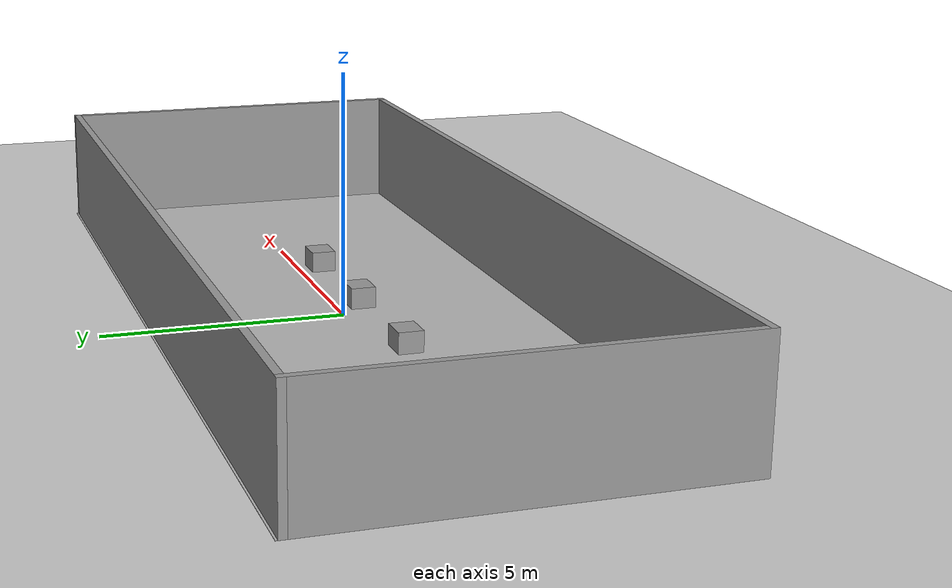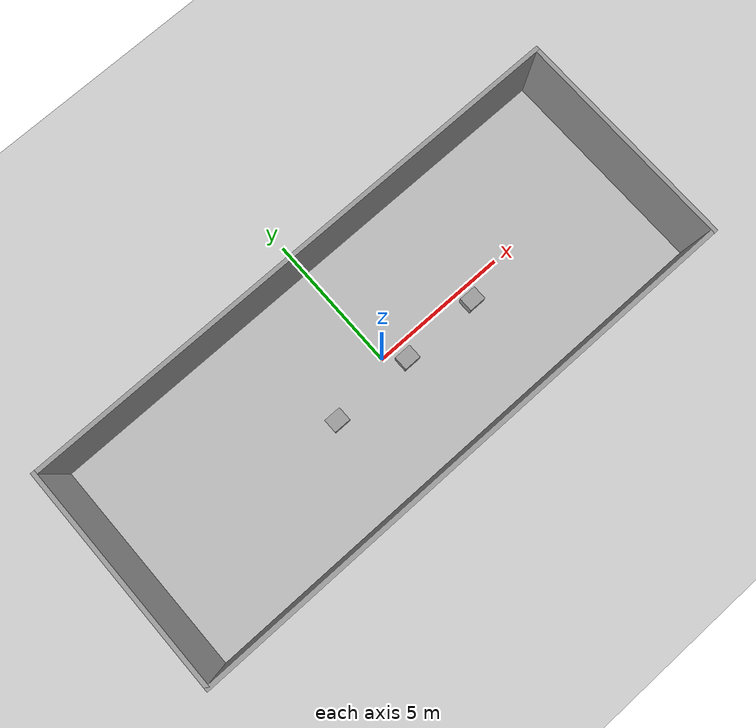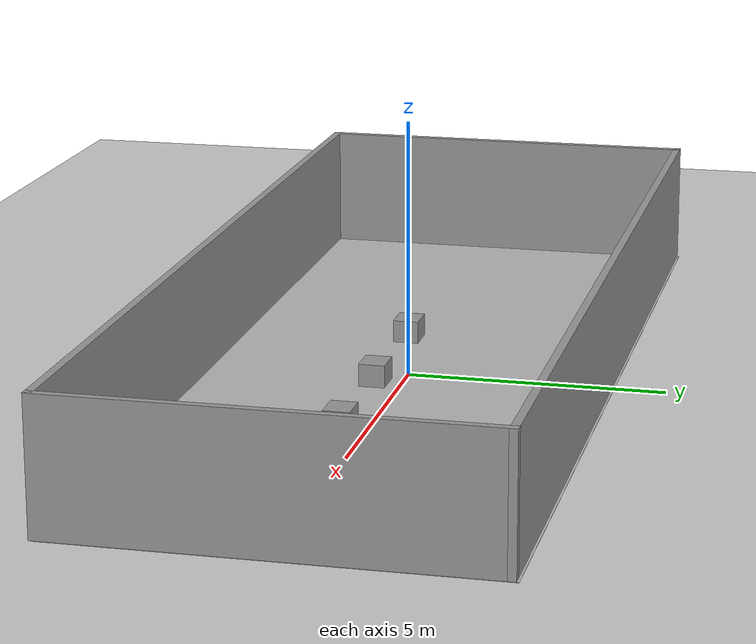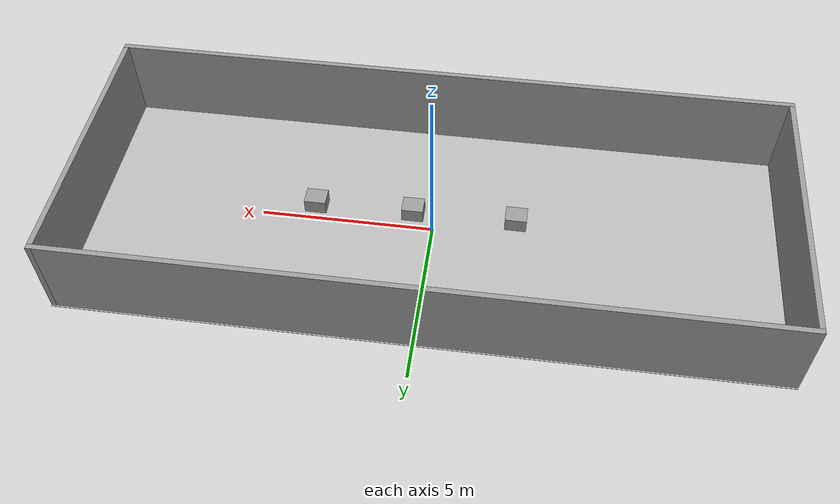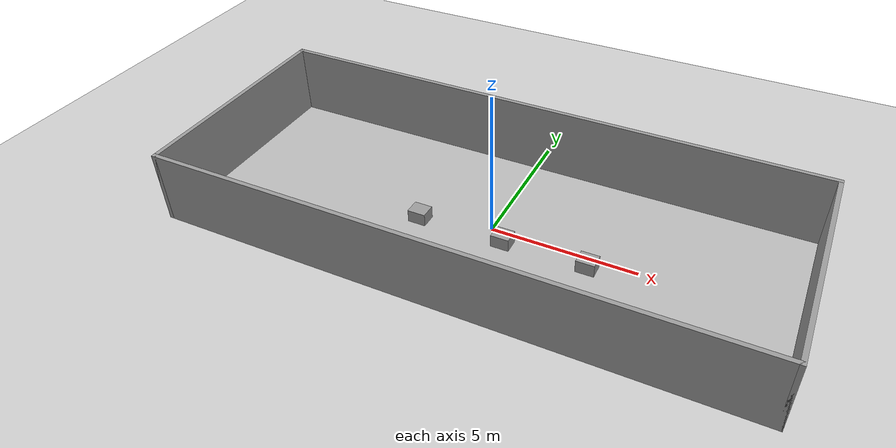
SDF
<sdf version="1.7">
 <world name="default">
  <light name="sun" type="directional">
   <pose>0 0 10 0 -0 0</pose>
   <diffuse>0.8 0.8 0.8 1</diffuse>
   <specular>0.2 0.2 0.2 1</specular>
   <attenuation>
    <range>1000</range>
    <constant>0.9</constant>
    <linear>0.01</linear>
    <quadratic>0.001</quadratic>
   </attenuation>
   <direction>-0.5 0.1 -0.9</direction>
   <spot><inner_angle>0</inner_angle><outer_angle>0</outer_angle><falloff>0</falloff></spot>
  </light>
  <model name="ground_plane">
   <static>1</static>
   <link name="link">
    <collision name="collision">
     <geometry><plane><normal>0 0 1</normal><size>100 100</size></plane></geometry>
     <surface><friction><ode><mu>100</mu><mu2>50</mu2></ode></friction></surface>
    </collision>
    <visual name="visual">
     <cast_shadows>0</cast_shadows>
     <geometry><plane><normal>0 0 1</normal><size>100 100</size></plane></geometry>
     <material>
      <script><uri>file://media/materials/scripts/gazebo.material</uri><name>Gazebo/Grey</name></script>
     </material>
    </visual>
   </link>
  </model>
  <gravity>0 0 -9.8</gravity>
  <magnetic_field>6e-06 2.3e-05 -4.2e-05</magnetic_field>
  <atmosphere type="adiabatic"/>
  <physics type="ode">
   <max_step_size>0.001</max_step_size>
   <real_time_factor>1</real_time_factor>
   <real_time_update_rate>1000</real_time_update_rate>
  </physics>
  <scene><ambient>0.4 0.4 0.4 1</ambient><background>0.7 0.7 0.7 1</background><shadows>1</shadows></scene>
  <audio><device>default</device></audio>
  <spherical_coordinates>
   <surface_model>EARTH_WGS84</surface_model>
   <latitude_deg>0</latitude_deg>
   <longitude_deg>0</longitude_deg>
   <elevation>0</elevation>
   <heading_deg>0</heading_deg>
  </spherical_coordinates>
  <model name="hallway2">
   <pose>-0.028321 -0.022711 0 0 -0 0</pose>
   <link name="Wall_1">
    <collision name="Wall_1_Collision">
     <geometry><box><size>20 0.15 2.5</size></box></geometry>
     <pose>0 0 1.25 0 -0 0</pose>
    </collision>
    <visual name="Wall_1_Visual">
     <pose>0 0 1.25 0 -0 0</pose>
     <geometry><box><size>20 0.15 2.5</size></box></geometry>
     <material>
      <script><uri>file://media/materials/scripts/gazebo.material</uri><name>Gazebo/Grey</name></script>
      <ambient>1 1 1 1</ambient>
     </material>
     <meta><layer>0</layer></meta>
    </visual>
    <pose>-0 -3.925 0 0 -0 0</pose>
   </link>
   <link name="Wall_2">
    <collision name="Wall_2_Collision">
     <geometry><box><size>8 0.15 2.5</size></box></geometry>
     <pose>0 0 1.25 0 -0 0</pose>
    </collision>
    <visual name="Wall_2_Visual">
     <pose>0 0 1.25 0 -0 0</pose>
     <geometry><box><size>8 0.15 2.5</size></box></geometry>
     <material>
      <script><uri>file://media/materials/scripts/gazebo.material</uri><name>Gazebo/Grey</name></script>
      <ambient>1 1 1 1</ambient>
     </material>
     <meta><layer>0</layer></meta>
    </visual>
    <pose>9.925 -0 0 0 -0 1.5708</pose>
   </link>
   <link name="Wall_3">
    <collision name="Wall_3_Collision">
     <geometry><box><size>20 0.15 2.5</size></box></geometry>
     <pose>0 0 1.25 0 -0 0</pose>
    </collision>
    <visual name="Wall_3_Visual">
     <pose>0 0 1.25 0 -0 0</pose>
     <geometry><box><size>20 0.15 2.5</size></box></geometry>
     <material>
      <script><uri>file://media/materials/scripts/gazebo.material</uri><name>Gazebo/Grey</name></script>
      <ambient>1 1 1 1</ambient>
     </material>
     <meta><layer>0</layer></meta>
    </visual>
    <pose>-0 3.925 0 0 -0 3.14159</pose>
   </link>
   <link name="Wall_4">
    <collision name="Wall_4_Collision">
     <geometry><box><size>8 0.15 2.5</size></box></geometry>
     <pose>0 0 1.25 0 -0 0</pose>
    </collision>
    <visual name="Wall_4_Visual">
     <pose>0 0 1.25 0 -0 0</pose>
     <geometry><box><size>8 0.15 2.5</size></box></geometry>
     <material>
      <script><uri>file://media/materials/scripts/gazebo.material</uri><name>Gazebo/Grey</name></script>
      <ambient>1 1 1 1</ambient>
     </material>
     <meta><layer>0</layer></meta>
    </visual>
    <pose>-9.925 -0 0 0 -0 -1.5708</pose>
   </link>
   <static>1</static>
  </model>
  <model name="walkability_floor">
   <static>1</static>
   <link name="floor_link">
    <collision name="floor_collision">
     <geometry><plane><normal>0 0 1</normal><size>20 8</size></plane></geometry>
     <surface><friction><ode><mu>100</mu><mu2>50</mu2></ode></friction></surface>
    </collision>
    <visual name="floor_visual">
     <cast_shadows>0</cast_shadows>
     <geometry><plane><normal>0 0 1</normal><size>20 8</size></plane></geometry>
     <material>
      <script>
       <uri>model://walkability_map/materials/scripts</uri>
       <uri>model://walkability_map/materials/textures</uri>
       <name>WalkabilityMap</name>
      </script>
     </material>
    </visual>
   </link>
   <pose>-0.022629 0.018881 0 0 -0 0</pose>
  </model>
  <model name="unit_box">
   <pose>3.48611 -0.481595 0.223264 -0 -0 -0</pose>
   <link name="link">
    <inertial>
     <mass>1</mass>
     <inertia>
      <ixx>0.166667</ixx>
      <ixy>0</ixy>
      <ixz>0</ixz>
      <iyy>0.166667</iyy>
      <iyz>0</iyz>
      <izz>0.166667</izz>
     </inertia>
    </inertial>
    <collision name="collision">
     <geometry><box><size>0.625554 0.516186 0.446527</size></box></geometry>
    </collision>
    <visual name="visual">
     <geometry><box><size>0.625554 0.516186 0.446527</size></box></geometry>
     <material>
      <script><name>Gazebo/Grey</name><uri>file://media/materials/scripts/gazebo.material</uri></script>
     </material>
    </visual>
   </link>
  </model>
  <model name="unit_box_clone">
   <pose>0.624999 -0.518329 0.223264 0 -0 0</pose>
   <link name="link">
    <inertial>
     <mass>1</mass>
     <inertia>
      <ixx>0.166667</ixx>
      <ixy>0</ixy>
      <ixz>0</ixz>
      <iyy>0.166667</iyy>
      <iyz>0</iyz>
      <izz>0.166667</izz>
     </inertia>
    </inertial>
    <collision name="collision">
     <geometry><box><size>0.625554 0.516186 0.446529</size></box></geometry>
    </collision>
    <visual name="visual">
     <geometry><box><size>0.625554 0.516186 0.446529</size></box></geometry>
     <material>
      <script><name>Gazebo/Grey</name><uri>file://media/materials/scripts/gazebo.material</uri></script>
     </material>
    </visual>
   </link>
  </model>
  <model name="unit_box_clone_0">
   <pose>-2.38515 -0.538613 0.223255 0 -0 0</pose>
   <link name="link">
    <inertial>
     <mass>1</mass>
     <inertia>
      <ixx>0.166667</ixx>
      <ixy>0</ixy>
      <ixz>0</ixz>
      <iyy>0.166667</iyy>
      <iyz>0</iyz>
      <izz>0.166667</izz>
     </inertia>
    </inertial>
    <collision name="collision">
     <geometry><box><size>0.625554 0.516186 0.446529</size></box></geometry>
    </collision>
    <visual name="visual">
     <geometry><box><size>0.625554 0.516186 0.446529</size></box></geometry>
     <material>
      <script><name>Gazebo/Grey</name><uri>file://media/materials/scripts/gazebo.material</uri></script>
     </material>
    </visual>
   </link>
  </model>
 </world>
</sdf>
